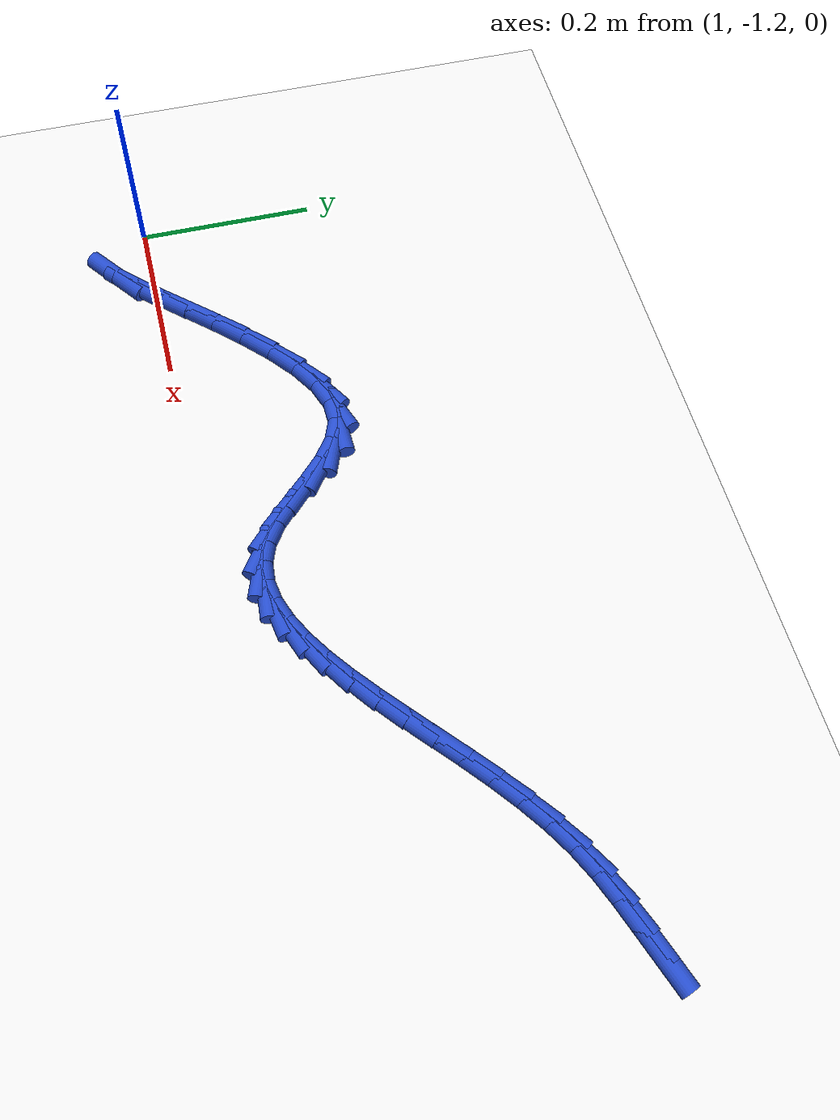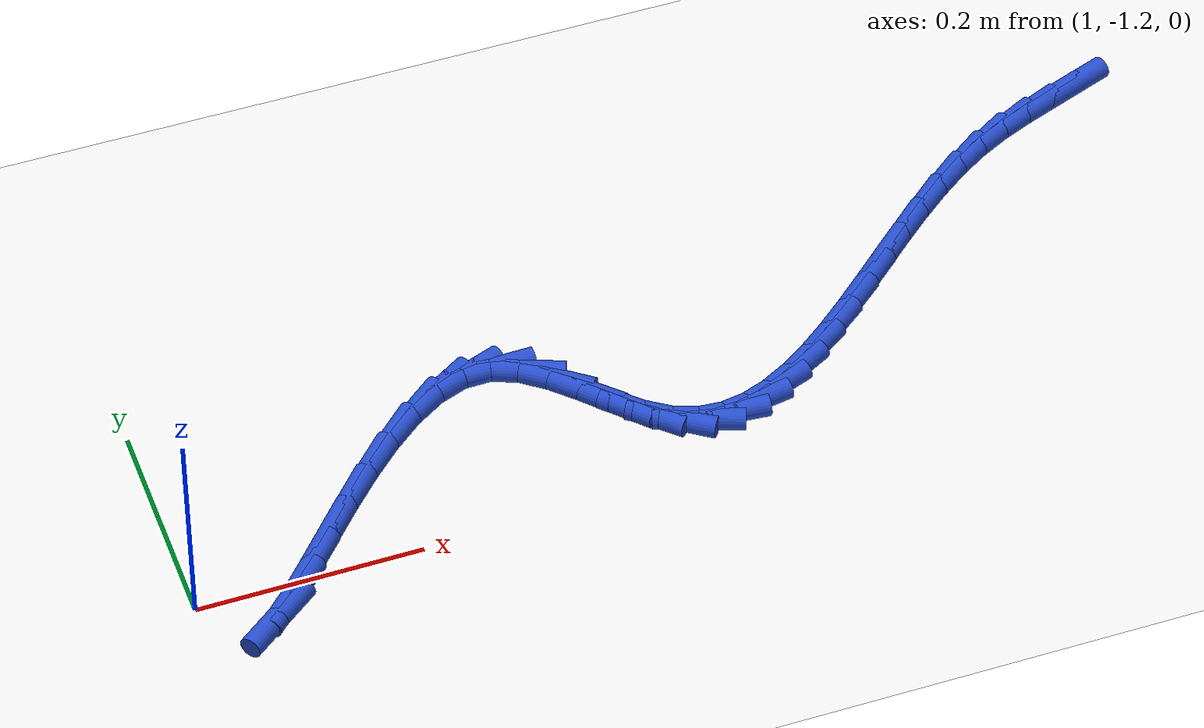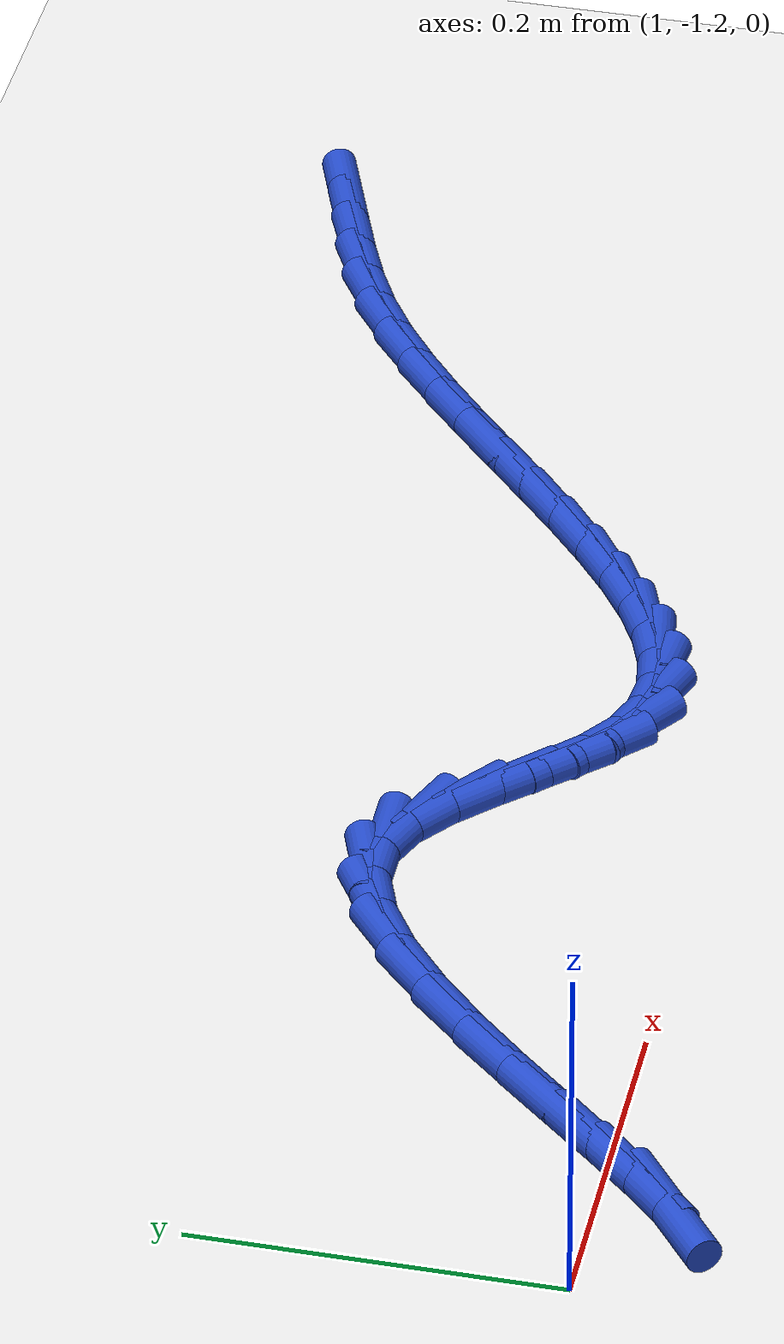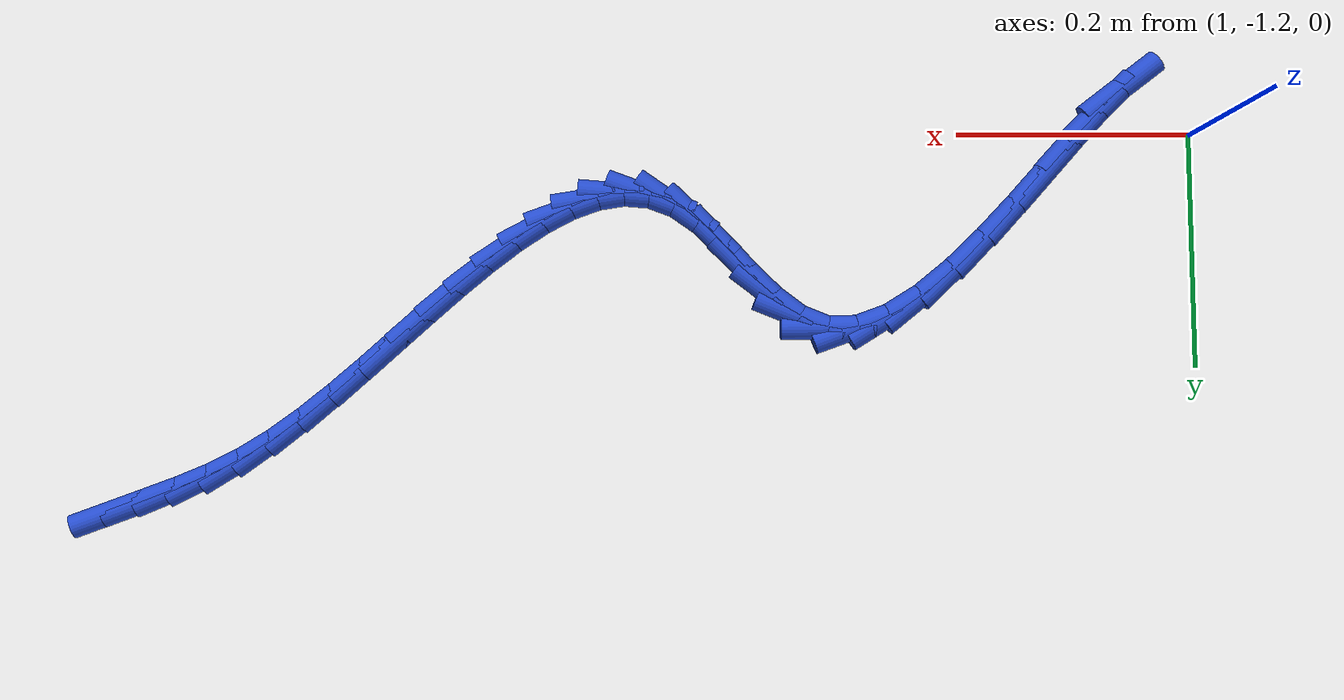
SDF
<sdf version="1.6">
 <world name="default">
  <model name="ground_plane">
   <static>1</static>
   <link name="link">
    <collision name="collision">
     <geometry><plane><normal>0 0 1</normal><size>100 100</size></plane></geometry>
     <surface><friction><ode><mu>100</mu><mu2>50</mu2></ode></friction></surface>
    </collision>
    <visual name="visual">
     <cast_shadows>0</cast_shadows>
     <geometry><plane><normal>0 0 1</normal><size>100 100</size></plane></geometry>
     <material>
      <script><uri>file://media/materials/scripts/gazebo.material</uri><name>Gazebo/WhiteGlow</name></script>
     </material>
    </visual>
   </link>
  </model>
  <model name="line">
   <link name="link_172">
    <pose>1.9113996275210217 -0.8794761721770126 0.01 0 1.57 0.35040782181292907</pose>
    <collision name="collision">
     <geometry><cylinder><radius>0.01</radius><length>0.08</length></cylinder></geometry>
    </collision>
    <visual name="visual">
     <material>
      <script><name>Gazebo/Blue</name><uri>file://media/materials/scripts/gazebo.material</uri></script>
     </material>
     <geometry><cylinder><radius>0.01</radius><length>0.08</length></cylinder></geometry>
    </visual>
   </link>
   <link name="link_173">
    <pose>1.8860008307542417 -0.8887591968474469 0.01 0 1.57 0.3551110321994403</pose>
    <collision name="collision">
     <geometry><cylinder><radius>0.01</radius><length>0.08</length></cylinder></geometry>
    </collision>
    <visual name="visual">
     <material>
      <script><name>Gazebo/Blue</name><uri>file://media/materials/scripts/gazebo.material</uri></script>
     </material>
     <geometry><cylinder><radius>0.01</radius><length>0.08</length></cylinder></geometry>
    </visual>
   </link>
   <link name="link_174">
    <pose>1.860140390141683 -0.8983490609559749 0.01 0 1.57 0.3943261251588251</pose>
    <collision name="collision">
     <geometry><cylinder><radius>0.01</radius><length>0.08</length></cylinder></geometry>
    </collision>
    <visual name="visual">
     <material>
      <script><name>Gazebo/Blue</name><uri>file://media/materials/scripts/gazebo.material</uri></script>
     </material>
     <geometry><cylinder><radius>0.01</radius><length>0.08</length></cylinder></geometry>
    </visual>
   </link>
   <link name="link_175">
    <pose>1.8340014120889456 -0.9092260399382172 0.01 0 1.57 0.4644756358886932</pose>
    <collision name="collision">
     <geometry><cylinder><radius>0.01</radius><length>0.08</length></cylinder></geometry>
    </collision>
    <visual name="visual">
     <material>
      <script><name>Gazebo/Blue</name><uri>file://media/materials/scripts/gazebo.material</uri></script>
     </material>
     <geometry><cylinder><radius>0.01</radius><length>0.08</length></cylinder></geometry>
    </visual>
   </link>
   <link name="link_176">
    <pose>1.8077670030016308 -0.9223704092297939 0.01 0 1.57 0.5531694353690089</pose>
    <collision name="collision">
     <geometry><cylinder><radius>0.01</radius><length>0.08</length></cylinder></geometry>
    </collision>
    <visual name="visual">
     <material>
      <script><name>Gazebo/Blue</name><uri>file://media/materials/scripts/gazebo.material</uri></script>
     </material>
     <geometry><cylinder><radius>0.01</radius><length>0.08</length></cylinder></geometry>
    </visual>
   </link>
   <link name="link_177">
    <pose>1.7815989018008291 -0.9385285454336117 0.01 0 1.57 0.625806547649533</pose>
    <collision name="collision">
     <geometry><cylinder><radius>0.01</radius><length>0.08</length></cylinder></geometry>
    </collision>
    <visual name="visual">
     <material>
      <script><name>Gazebo/Blue</name><uri>file://media/materials/scripts/gazebo.material</uri></script>
     </material>
     <geometry><cylinder><radius>0.01</radius><length>0.08</length></cylinder></geometry>
    </visual>
   </link>
   <link name="link_178">
    <pose>1.7555584889081917 -0.957348252418797 0.01 0 1.57 0.6771444226937069</pose>
    <collision name="collision">
     <geometry><cylinder><radius>0.01</radius><length>0.08</length></cylinder></geometry>
    </collision>
    <visual name="visual">
     <material>
      <script><name>Gazebo/Blue</name><uri>file://media/materials/scripts/gazebo.material</uri></script>
     </material>
     <geometry><cylinder><radius>0.01</radius><length>0.08</length></cylinder></geometry>
    </visual>
   </link>
   <link name="link_179">
    <pose>1.7296777065675293 -0.9781550895043147 0.01 0 1.57 0.7108695249859924</pose>
    <collision name="collision">
     <geometry><cylinder><radius>0.01</radius><length>0.08</length></cylinder></geometry>
    </collision>
    <visual name="visual">
     <material>
      <script><name>Gazebo/Blue</name><uri>file://media/materials/scripts/gazebo.material</uri></script>
     </material>
     <geometry><cylinder><radius>0.01</radius><length>0.08</length></cylinder></geometry>
    </visual>
   </link>
   <link name="link_180">
    <pose>1.7039884931776004 -1.0002745739193146 0.01 0 1.57 0.7293005366602325</pose>
    <collision name="collision">
     <geometry><cylinder><radius>0.01</radius><length>0.08</length></cylinder></geometry>
    </collision>
    <visual name="visual">
     <material>
      <script><name>Gazebo/Blue</name><uri>file://media/materials/scripts/gazebo.material</uri></script>
     </material>
     <geometry><cylinder><radius>0.01</radius><length>0.08</length></cylinder></geometry>
    </visual>
   </link>
   <link name="link_181">
    <pose>1.6785227871371609 -1.0230322228929465 0.01 0 1.57 0.7335180556667144</pose>
    <collision name="collision">
     <geometry><cylinder><radius>0.01</radius><length>0.08</length></cylinder></geometry>
    </collision>
    <visual name="visual">
     <material>
      <script><name>Gazebo/Blue</name><uri>file://media/materials/scripts/gazebo.material</uri></script>
     </material>
     <geometry><cylinder><radius>0.01</radius><length>0.08</length></cylinder></geometry>
    </visual>
   </link>
   <link name="link_182">
    <pose>1.6533125268449704 -1.045753553654358 0.01 0 1.57 0.7234248869150388</pose>
    <collision name="collision">
     <geometry><cylinder><radius>0.01</radius><length>0.08</length></cylinder></geometry>
    </collision>
    <visual name="visual">
     <material>
      <script><name>Gazebo/Blue</name><uri>file://media/materials/scripts/gazebo.material</uri></script>
     </material>
     <geometry><cylinder><radius>0.01</radius><length>0.08</length></cylinder></geometry>
    </visual>
   </link>
   <link name="link_183">
    <pose>1.6283896506997857 -1.0677640834326996 0.01 0 1.57 0.6976643508499039</pose>
    <collision name="collision">
     <geometry><cylinder><radius>0.01</radius><length>0.08</length></cylinder></geometry>
    </collision>
    <visual name="visual">
     <material>
      <script><name>Gazebo/Blue</name><uri>file://media/materials/scripts/gazebo.material</uri></script>
     </material>
     <geometry><cylinder><radius>0.01</radius><length>0.08</length></cylinder></geometry>
    </visual>
   </link>
   <link name="link_184">
    <pose>1.6037860971003643 -1.0883893294571205 0.01 0 1.57 0.6533566164826983</pose>
    <collision name="collision">
     <geometry><cylinder><radius>0.01</radius><length>0.08</length></cylinder></geometry>
    </collision>
    <visual name="visual">
     <material>
      <script><name>Gazebo/Blue</name><uri>file://media/materials/scripts/gazebo.material</uri></script>
     </material>
     <geometry><cylinder><radius>0.01</radius><length>0.08</length></cylinder></geometry>
    </visual>
   </link>
   <link name="link_185">
    <pose>1.579533804445464 -1.10695480895677 0.01 0 1.57 0.5856350605138978</pose>
    <collision name="collision">
     <geometry><cylinder><radius>0.01</radius><length>0.08</length></cylinder></geometry>
    </collision>
    <visual name="visual">
     <material>
      <script><name>Gazebo/Blue</name><uri>file://media/materials/scripts/gazebo.material</uri></script>
     </material>
     <geometry><cylinder><radius>0.01</radius><length>0.08</length></cylinder></geometry>
    </visual>
   </link>
   <link name="link_186">
    <pose>1.5556647111338429 -1.1227860391607978 0.01 0 1.57 0.4870889761163651</pose>
    <collision name="collision">
     <geometry><cylinder><radius>0.01</radius><length>0.08</length></cylinder></geometry>
    </collision>
    <visual name="visual">
     <material>
      <script><name>Gazebo/Blue</name><uri>file://media/materials/scripts/gazebo.material</uri></script>
     </material>
     <geometry><cylinder><radius>0.01</radius><length>0.08</length></cylinder></geometry>
    </visual>
   </link>
   <link name="link_187">
    <pose>1.5322107555642581 -1.135208537298353 0.01 0 1.57 0.34773969257220616</pose>
    <collision name="collision">
     <geometry><cylinder><radius>0.01</radius><length>0.08</length></cylinder></geometry>
    </collision>
    <visual name="visual">
     <material>
      <script><name>Gazebo/Blue</name><uri>file://media/materials/scripts/gazebo.material</uri></script>
     </material>
     <geometry><cylinder><radius>0.01</radius><length>0.08</length></cylinder></geometry>
    </visual>
   </link>
   <link name="link_188">
    <pose>1.5092038761354671 -1.1435478205985845 0.01 0 1.57 0.15766514213351251</pose>
    <collision name="collision">
     <geometry><cylinder><radius>0.01</radius><length>0.08</length></cylinder></geometry>
    </collision>
    <visual name="visual">
     <material>
      <script><name>Gazebo/Blue</name><uri>file://media/materials/scripts/gazebo.material</uri></script>
     </material>
     <geometry><cylinder><radius>0.01</radius><length>0.08</length></cylinder></geometry>
    </visual>
   </link>
   <link name="link_189">
    <pose>1.4866760112462276 -1.1471294062906425 0.01 0 1.57 -0.08385621678063643</pose>
    <collision name="collision">
     <geometry><cylinder><radius>0.01</radius><length>0.08</length></cylinder></geometry>
    </collision>
    <visual name="visual">
     <material>
      <script><name>Gazebo/Blue</name><uri>file://media/materials/scripts/gazebo.material</uri></script>
     </material>
     <geometry><cylinder><radius>0.01</radius><length>0.08</length></cylinder></geometry>
    </visual>
   </link>
   <link name="link_190">
    <pose>1.464659099295297 -1.1452788116036758 0.01 0 1.57 -0.35486604037128416</pose>
    <collision name="collision">
     <geometry><cylinder><radius>0.01</radius><length>0.08</length></cylinder></geometry>
    </collision>
    <visual name="visual">
     <material>
      <script><name>Gazebo/Blue</name><uri>file://media/materials/scripts/gazebo.material</uri></script>
     </material>
     <geometry><cylinder><radius>0.01</radius><length>0.08</length></cylinder></geometry>
    </visual>
   </link>
   <link name="link_191">
    <pose>1.4431850786814344 -1.1373215537668342 0.01 0 1.57 -0.61031402972032</pose>
    <collision name="collision">
     <geometry><cylinder><radius>0.01</radius><length>0.08</length></cylinder></geometry>
    </collision>
    <visual name="visual">
     <material>
      <script><name>Gazebo/Blue</name><uri>file://media/materials/scripts/gazebo.material</uri></script>
     </material>
     <geometry><cylinder><radius>0.01</radius><length>0.08</length></cylinder></geometry>
    </visual>
   </link>
   <link name="link_192">
    <pose>1.4222721814616788 -1.1226953579871037 0.01 0 1.57 -0.7681690366023505</pose>
    <collision name="collision">
     <geometry><cylinder><radius>0.01</radius><length>0.08</length></cylinder></geometry>
    </collision>
    <visual name="visual">
     <material>
      <script><name>Gazebo/Blue</name><uri>file://media/materials/scripts/gazebo.material</uri></script>
     </material>
     <geometry><cylinder><radius>0.01</radius><length>0.08</length></cylinder></geometry>
    </visual>
   </link>
   <link name="link_193">
    <pose>1.4016968830722645 -1.1028171078865572 0.01 0 1.57 -0.8170590218134025</pose>
    <collision name="collision">
     <geometry><cylinder><radius>0.01</radius><length>0.08</length></cylinder></geometry>
    </collision>
    <visual name="visual">
     <material>
      <script><name>Gazebo/Blue</name><uri>file://media/materials/scripts/gazebo.material</uri></script>
     </material>
     <geometry><cylinder><radius>0.01</radius><length>0.08</length></cylinder></geometry>
    </visual>
   </link>
   <link name="link_194">
    <pose>1.381028813397513 -1.0807970434608172 0.01 0 1.57 -0.7806380387073995</pose>
    <collision name="collision">
     <geometry><cylinder><radius>0.01</radius><length>0.08</length></cylinder></geometry>
    </collision>
    <visual name="visual">
     <material>
      <script><name>Gazebo/Blue</name><uri>file://media/materials/scripts/gazebo.material</uri></script>
     </material>
     <geometry><cylinder><radius>0.01</radius><length>0.08</length></cylinder></geometry>
    </visual>
   </link>
   <link name="link_195">
    <pose>1.3598309314749695 -1.0598000160848622 0.01 0 1.57 -0.6488383925594902</pose>
    <collision name="collision">
     <geometry><cylinder><radius>0.01</radius><length>0.08</length></cylinder></geometry>
    </collision>
    <visual name="visual">
     <material>
      <script><name>Gazebo/Blue</name><uri>file://media/materials/scripts/gazebo.material</uri></script>
     </material>
     <geometry><cylinder><radius>0.01</radius><length>0.08</length></cylinder></geometry>
    </visual>
   </link>
   <link name="link_196">
    <pose>1.33766619634218 -1.0429908771336711 0.01 0 1.57 -0.38156473762754844</pose>
    <collision name="collision">
     <geometry><cylinder><radius>0.01</radius><length>0.08</length></cylinder></geometry>
    </collision>
    <visual name="visual">
     <material>
      <script><name>Gazebo/Blue</name><uri>file://media/materials/scripts/gazebo.material</uri></script>
     </material>
     <geometry><cylinder><radius>0.01</radius><length>0.08</length></cylinder></geometry>
    </visual>
   </link>
   <link name="link_197">
    <pose>1.314097567036691 -1.0335344779822222 0.01 0 1.57 0.018731104883558666</pose>
    <collision name="collision">
     <geometry><cylinder><radius>0.01</radius><length>0.08</length></cylinder></geometry>
    </collision>
    <visual name="visual">
     <material>
      <script><name>Gazebo/Blue</name><uri>file://media/materials/scripts/gazebo.material</uri></script>
     </material>
     <geometry><cylinder><radius>0.01</radius><length>0.08</length></cylinder></geometry>
    </visual>
   </link>
   <link name="link_198">
    <pose>1.288801961075142 -1.0340083480516598 0.01 0 1.57 0.3492236104053921</pose>
    <collision name="collision">
     <geometry><cylinder><radius>0.01</radius><length>0.08</length></cylinder></geometry>
    </collision>
    <visual name="visual">
     <material>
      <script><name>Gazebo/Blue</name><uri>file://media/materials/scripts/gazebo.material</uri></script>
     </material>
     <geometry><cylinder><radius>0.01</radius><length>0.08</length></cylinder></geometry>
    </visual>
   </link>
   <link name="link_199">
    <pose>1.2620876069988654 -1.0437363508011832 0.01 0 1.57 0.5567988746406839</pose>
    <collision name="collision">
     <geometry><cylinder><radius>0.01</radius><length>0.08</length></cylinder></geometry>
    </collision>
    <visual name="visual">
     <material>
      <script><name>Gazebo/Blue</name><uri>file://media/materials/scripts/gazebo.material</uri></script>
     </material>
     <geometry><cylinder><radius>0.01</radius><length>0.08</length></cylinder></geometry>
    </visual>
   </link>
   <link name="link_200">
    <pose>1.23448011806891 -1.0609219870866065 0.01 0 1.57 0.6848135119186922</pose>
    <collision name="collision">
     <geometry><cylinder><radius>0.01</radius><length>0.08</length></cylinder></geometry>
    </collision>
    <visual name="visual">
     <material>
      <script><name>Gazebo/Blue</name><uri>file://media/materials/scripts/gazebo.material</uri></script>
     </material>
     <geometry><cylinder><radius>0.01</radius><length>0.08</length></cylinder></geometry>
    </visual>
   </link>
   <link name="link_201">
    <pose>1.2065053087698032 -1.0837677206933156 0.01 0 1.57 0.7650794855261247</pose>
    <collision name="collision">
     <geometry><cylinder><radius>0.01</radius><length>0.08</length></cylinder></geometry>
    </collision>
    <visual name="visual">
     <material>
      <script><name>Gazebo/Blue</name><uri>file://media/materials/scripts/gazebo.material</uri></script>
     </material>
     <geometry><cylinder><radius>0.01</radius><length>0.08</length></cylinder></geometry>
    </visual>
   </link>
   <link name="link_202">
    <pose>1.1786889935860725 -1.1104760154066977 0.01 0 1.57 0.8147485277849262</pose>
    <collision name="collision">
     <geometry><cylinder><radius>0.01</radius><length>0.08</length></cylinder></geometry>
    </collision>
    <visual name="visual">
     <material>
      <script><name>Gazebo/Blue</name><uri>file://media/materials/scripts/gazebo.material</uri></script>
     </material>
     <geometry><cylinder><radius>0.01</radius><length>0.08</length></cylinder></geometry>
    </visual>
   </link>
   <link name="link_203">
    <pose>1.1515569870022468 -1.139249335012139 0.01 0 1.57 0.8420835867558558</pose>
    <collision name="collision">
     <geometry><cylinder><radius>0.01</radius><length>0.08</length></cylinder></geometry>
    </collision>
    <visual name="visual">
     <material>
      <script><name>Gazebo/Blue</name><uri>file://media/materials/scripts/gazebo.material</uri></script>
     </material>
     <geometry><cylinder><radius>0.01</radius><length>0.08</length></cylinder></geometry>
    </visual>
   </link>
   <link name="link_204">
    <pose>1.1256351035028545 -1.1682901432950277 0.01 0 1.57 0.8496235707458433</pose>
    <collision name="collision">
     <geometry><cylinder><radius>0.01</radius><length>0.08</length></cylinder></geometry>
    </collision>
    <visual name="visual">
     <material>
      <script><name>Gazebo/Blue</name><uri>file://media/materials/scripts/gazebo.material</uri></script>
     </material>
     <geometry><cylinder><radius>0.01</radius><length>0.08</length></cylinder></geometry>
    </visual>
   </link>
   <link name="link_205">
    <pose>1.1014491575724228 -1.1958009040407485 0.01 0 1.57 0.8343529872932992</pose>
    <collision name="collision">
     <geometry><cylinder><radius>0.01</radius><length>0.08</length></cylinder></geometry>
    </collision>
    <visual name="visual">
     <material>
      <script><name>Gazebo/Blue</name><uri>file://media/materials/scripts/gazebo.material</uri></script>
     </material>
     <geometry><cylinder><radius>0.01</radius><length>0.08</length></cylinder></geometry>
    </visual>
   </link>
   <link name="link_206">
    <pose>1.0795249636954813 -1.2199840810346898 0.01 0 1.57 0.7833410656140101</pose>
    <collision name="collision">
     <geometry><cylinder><radius>0.01</radius><length>0.08</length></cylinder></geometry>
    </collision>
    <visual name="visual">
     <material>
      <script><name>Gazebo/Blue</name><uri>file://media/materials/scripts/gazebo.material</uri></script>
     </material>
     <geometry><cylinder><radius>0.01</radius><length>0.08</length></cylinder></geometry>
    </visual>
   </link>
   <link name="link_207">
    <pose>1.060388336356557 -1.2390421380622374 0.01 0 1.57 0.6542516792524076</pose>
    <collision name="collision">
     <geometry><cylinder><radius>0.01</radius><length>0.08</length></cylinder></geometry>
    </collision>
    <visual name="visual">
     <material>
      <script><name>Gazebo/Blue</name><uri>file://media/materials/scripts/gazebo.material</uri></script>
     </material>
     <geometry><cylinder><radius>0.01</radius><length>0.08</length></cylinder></geometry>
    </visual>
   </link>
  </model>
 </world>
</sdf>
